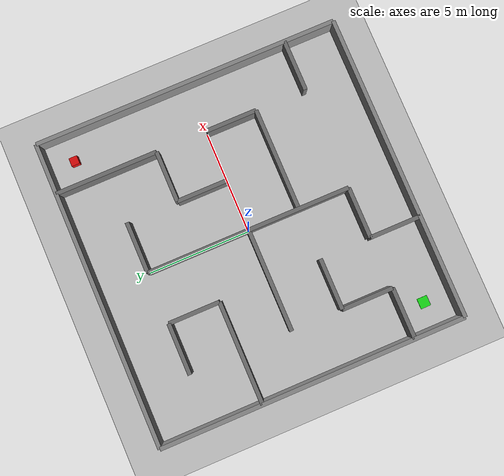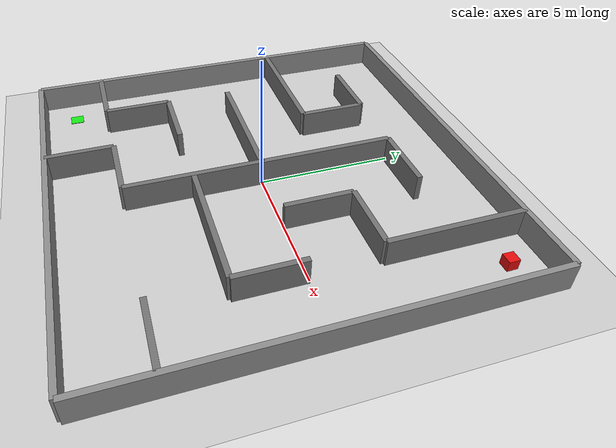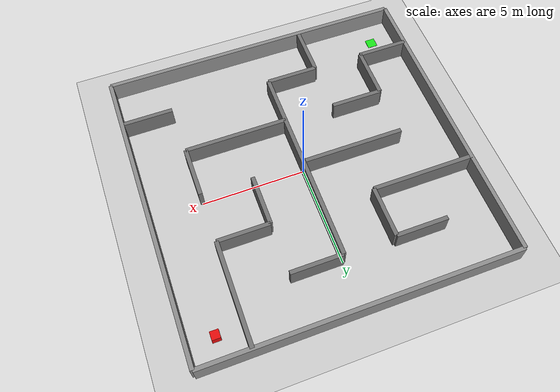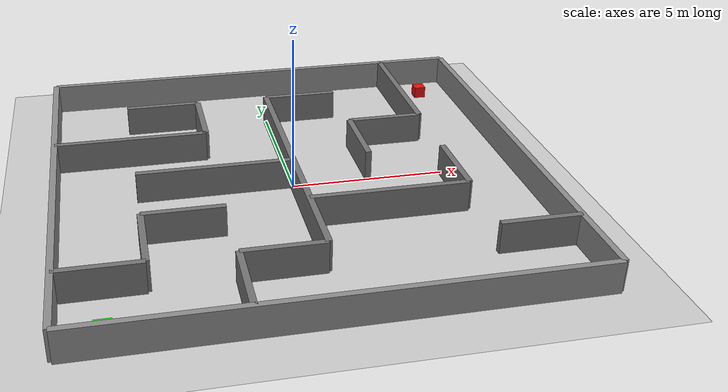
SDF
<?xml version="1.0" ?>
<sdf version="1.9">
  <world name="camera_maze_world">

    <physics name="1ms" type="ignored">
      <max_step_size>0.001</max_step_size>
      <real_time_factor>1.0</real_time_factor>
    </physics>

    <plugin filename="gz-sim-physics-system" name="gz::sim::systems::Physics"></plugin>
    <plugin filename="gz-sim-sensors-system" name="gz::sim::systems::Sensors">
      <render_engine>ogre2</render_engine>
    </plugin>
    <plugin filename="gz-sim-scene-broadcaster-system" name="gz::sim::systems::SceneBroadcaster"></plugin>
    <plugin filename="gz-sim-user-commands-system" name="gz::sim::systems::UserCommands"></plugin>
    <plugin filename="gz-sim-contact-system" name="gz::sim::systems::Contact"></plugin>

    <light type="directional" name="sun">
      <cast_shadows>true</cast_shadows>
      <pose>0 0 10 0 0 0</pose>
      <diffuse>0.8 0.8 0.8 1</diffuse>
      <specular>0.2 0.2 0.2 1</specular>
      <attenuation>
        <range>1000</range>
        <constant>0.9</constant>
        <linear>0.01</linear>
        <quadratic>0.001</quadratic>
      </attenuation>
      <direction>-0.5 0.1 -0.9</direction>
    </light>

    <model name="ground_plane">
      <static>true</static>
      <link name="link">
        <collision name="collision">
          <pose>0.00 0.00 0 0 0 0</pose>
          <geometry><plane><normal>0 0 1</normal><size>20.0 20.0</size></plane></geometry>
        </collision>
        <visual name="visual">
          <pose>0.00 0.00 0 0 0 0</pose>
          <geometry><plane><normal>0 0 1</normal><size>20.0 20.0</size></plane></geometry>
          <material>
            <ambient>0.8 0.8 0.8 1</ambient>
            <diffuse>0.8 0.8 0.8 1</diffuse>
            <specular>0.8 0.8 0.8 1</specular>
          </material>
        </visual>
      </link>
    </model>

    <!-- Robot spawn marker: a flat green square showing exactly where the
         robot should be spawned. -->
    <model name="robot_spawn_marker">
      <static>true</static>
      <pose>-6.25 -6.25 0.01 0 0 0</pose>
      <link name="link">
        <visual name="visual">
          <geometry><box><size>0.5 0.5 0.02</size></box></geometry>
          <material>
            <ambient>0.1 0.9 0.1 1</ambient>
            <diffuse>0.1 0.9 0.1 1</diffuse>
          </material>
        </visual>
      </link>
    </model>

    <!-- MAZE LAYOUT:  -->

    <!-- Outer walls -->

    <model name="wall_west">
      <static>true</static>
      <pose>-7.50 0.00 0.5 0 0 0</pose>
      <link name="link">
        <collision name="collision"><geometry><box><size>0.2 15.00 1</size></box></geometry></collision>
        <visual name="visual">
          <geometry><box><size>0.2 15.00 1</size></box></geometry>
          <material><ambient>0.55 0.55 0.55 1</ambient><diffuse>0.55 0.55 0.55 1</diffuse></material>
        </visual>
      </link>
    </model>

    <model name="wall_east">
      <static>true</static>
      <pose>7.50 0.00 0.5 0 0 0</pose>
      <link name="link">
        <collision name="collision"><geometry><box><size>0.2 15.00 1</size></box></geometry></collision>
        <visual name="visual">
          <geometry><box><size>0.2 15.00 1</size></box></geometry>
          <material><ambient>0.55 0.55 0.55 1</ambient><diffuse>0.55 0.55 0.55 1</diffuse></material>
        </visual>
      </link>
    </model>

    <model name="wall_north">
      <static>true</static>
      <pose>0.00 7.50 0.5 0 0 0</pose>
      <link name="link">
        <collision name="collision"><geometry><box><size>15.00 0.2 1</size></box></geometry></collision>
        <visual name="visual">
          <geometry><box><size>15.00 0.2 1</size></box></geometry>
          <material><ambient>0.55 0.55 0.55 1</ambient><diffuse>0.55 0.55 0.55 1</diffuse></material>
        </visual>
      </link>
    </model>

    <model name="wall_south">
      <static>true</static>
      <pose>0.00 -7.50 0.5 0 0 0</pose>
      <link name="link">
        <collision name="collision"><geometry><box><size>15.00 0.2 1</size></box></geometry></collision>
        <visual name="visual">
          <geometry><box><size>15.00 0.2 1</size></box></geometry>
          <material><ambient>0.55 0.55 0.55 1</ambient><diffuse>0.55 0.55 0.55 1</diffuse></material>
        </visual>
      </link>
    </model>

    <!-- Internal maze dividers (25 walls) -->

    <model name="divider1">
      <static>true</static>
      <pose>-2.50 -6.25 0.50 0 0 0</pose>
      <link name="link">
        <collision name="collision"><geometry><box><size>0.20 2.50 1.0</size></box></geometry></collision>
        <visual name="visual">
          <geometry><box><size>0.20 2.50 1.0</size></box></geometry>
          <material><ambient>0.45 0.45 0.45 1</ambient><diffuse>0.45 0.45 0.45 1</diffuse></material>
        </visual>
      </link>
    </model>
    <model name="divider2">
      <static>true</static>
      <pose>-5.00 -3.75 0.50 0 0 0</pose>
      <link name="link">
        <collision name="collision"><geometry><box><size>0.20 2.50 1.0</size></box></geometry></collision>
        <visual name="visual">
          <geometry><box><size>0.20 2.50 1.0</size></box></geometry>
          <material><ambient>0.45 0.45 0.45 1</ambient><diffuse>0.45 0.45 0.45 1</diffuse></material>
        </visual>
      </link>
    </model>

    <model name="divider3">
      <static>true</static>
      <pose>0.00 -2.50 0.50 0 0 0</pose>
      <link name="link">
        <collision name="collision"><geometry><box><size>0.20 5. 0 1.0</size></box></geometry></collision>
        <visual name="visual">
          <geometry><box><size>0.20 5.0 1.0</size></box></geometry>
          <material><ambient>0.45 0.45 0.45 1</ambient><diffuse>0.45 0.45 0.45 1</diffuse></material>
        </visual>
      </link>
    </model>
    <model name="divider4">
      <static>true</static>
      <pose>5.00 -1.25 0.50 0 0 0</pose>
      <link name="link">
        <collision name="collision"><geometry><box><size>0.20 2.50 1.0</size></box></geometry></collision>
        <visual name="visual">
          <geometry><box><size>0.20 2.50 1.0</size></box></geometry>
          <material><ambient>0.45 0.45 0.45 1</ambient><diffuse>0.45 0.45 0.45 1</diffuse></material>
        </visual>
      </link>
    </model>
    <model name="divider5">
      <static>true</static>
      <pose>0.00 2.5 0.50 0 0 0</pose>
      <link name="link">
        <collision name="collision"><geometry><box><size>0.20 5.0 1.0</size></box></geometry></collision>
        <visual name="visual">
          <geometry><box><size>0.20 5.0 1.0</size></box></geometry>
          <material><ambient>0.45 0.45 0.45 1</ambient><diffuse>0.45 0.45 0.45 1</diffuse></material>
        </visual>
      </link>
    </model>
    <model name="divider6">
      <static>true</static>
      <pose>2.50 1.25 0.50 0 0 0</pose>
      <link name="link">
        <collision name="collision"><geometry><box><size>0.20 2.50 1.0</size></box></geometry></collision>
        <visual name="visual">
          <geometry><box><size>0.20 2.50 1.0</size></box></geometry>
          <material><ambient>0.45 0.45 0.45 1</ambient><diffuse>0.45 0.45 0.45 1</diffuse></material>
        </visual>
      </link>
    </model>
    <model name="divider7">
      <static>true</static>
      <pose>-2.50 3.75 0.50 0 0 0</pose>
      <link name="link">
        <collision name="collision"><geometry><box><size>0.20 2.50 1.0</size></box></geometry></collision>
        <visual name="visual">
          <geometry><box><size>0.20 2.50 1.0</size></box></geometry>
          <material><ambient>0.45 0.45 0.45 1</ambient><diffuse>0.45 0.45 0.45 1</diffuse></material>
        </visual>
      </link>
    </model>

    <model name="divider8">
      <static>true</static>
      <pose>5.00 5 0.50 0 0 0</pose>
      <link name="link">
        <collision name="collision"><geometry><box><size>0.20 5.0 1.0</size></box></geometry></collision>
        <visual name="visual">
          <geometry><box><size>0.20 5.0 1.0</size></box></geometry>
          <material><ambient>0.45 0.45 0.45 1</ambient><diffuse>0.45 0.45 0.45 1</diffuse></material>
        </visual>
      </link>
    </model>

    <model name="divider9">
      <static>true</static>
      <pose>-6.25 -5.00 0.50 0 0 0</pose>
      <link name="link">
        <collision name="collision"><geometry><box><size>2.50 0.20 1.0</size></box></geometry></collision>
        <visual name="visual">
          <geometry><box><size>2.50 0.20 1.0</size></box></geometry>
          <material><ambient>0.45 0.45 0.45 1</ambient><diffuse>0.45 0.45 0.45 1</diffuse></material>
        </visual>
      </link>
    </model>
    <model name="divider10">
      <static>true</static>
      <pose>-1.25 -5.00 0.50 0 0 0</pose>
      <link name="link">
        <collision name="collision"><geometry><box><size>2.50 0.20 1.0</size></box></geometry></collision>
        <visual name="visual">
          <geometry><box><size>2.50 0.20 1.0</size></box></geometry>
          <material><ambient>0.45 0.45 0.45 1</ambient><diffuse>0.45 0.45 0.45 1</diffuse></material>
        </visual>
      </link>
    </model>
    <model name="divider11">
      <static>true</static>
      <pose>6.25 -5.00 0.50 0 0 0</pose>
      <link name="link">
        <collision name="collision"><geometry><box><size>0.20 5.0 1.0</size></box></geometry></collision>
        <visual name="visual">
          <geometry><box><size>2.50 0.20 1.0</size></box></geometry>
          <material><ambient>0.45 0.45 0.45 1</ambient><diffuse>0.45 0.45 0.45 1</diffuse></material>
        </visual>
      </link>
    </model>

    <model name="divider12">
      <static>true</static>
      <pose>-3.75 -2.50 0.50 0 0 0</pose>
      <link name="link">
        <collision name="collision"><geometry><box><size>2.50 0.20 1.0</size></box></geometry></collision>
        <visual name="visual">
          <geometry><box><size>2.50 0.20 1.0</size></box></geometry>
          <material><ambient>0.45 0.45 0.45 1</ambient><diffuse>0.45 0.45 0.45 1</diffuse></material>
        </visual>
      </link>
    </model>
    <model name="divider13">
      <static>true</static>
      <pose>2.50 -2.50 0.50 0 0 0</pose>
      <link name="link">
        <collision name="collision"><geometry><box><size>5.0 0.20 1.0</size></box></geometry></collision>
        <visual name="visual">
          <geometry><box><size>5.00 0.20 1.0</size></box></geometry>
          <material><ambient>0.45 0.45 0.45 1</ambient><diffuse>0.45 0.45 0.45 1</diffuse></material>
        </visual>
      </link>
    </model>

    <model name="divider14">
      <static>true</static>
      <pose>-2.5 0.00 0.50 0 0 0</pose>
      <link name="link">
        <collision name="collision"><geometry><box><size>5.0 0.20 1.0</size></box></geometry></collision>
        <visual name="visual">
          <geometry><box><size>5.0 0.20 1.0</size></box></geometry>
          <material><ambient>0.45 0.45 0.45 1</ambient><diffuse>0.45 0.45 0.45 1</diffuse></material>
        </visual>
      </link>
    </model>
    <model name="divider15">
      <static>true</static>
      <pose>-5.00 2.50 0.50 0 0 0</pose>
      <link name="link">
        <collision name="collision"><geometry><box><size>5.0 0.20 1.0</size></box></geometry></collision>
        <visual name="visual">
          <geometry><box><size>5.0 0.20 1.0</size></box></geometry>
          <material><ambient>0.45 0.45 0.45 1</ambient><diffuse>0.45 0.45 0.45 1</diffuse></material>
        </visual>
      </link>
    </model>

    <model name="divider16">
      <static>true</static>
      <pose>3.75 2.50 0.50 0 0 0</pose>
      <link name="link">
        <collision name="collision"><geometry><box><size>2.50 0.20 1.0</size></box></geometry></collision>
        <visual name="visual">
          <geometry><box><size>2.50 0.20 1.0</size></box></geometry>
          <material><ambient>0.45 0.45 0.45 1</ambient><diffuse>0.45 0.45 0.45 1</diffuse></material>
        </visual>
      </link>
    </model>
    <model name="divider17">
      <static>true</static>
      <pose>-3.75 5.00 0.50 0 0 0</pose>
      <link name="link">
        <collision name="collision"><geometry><box><size>2.50 0.20 1.0</size></box></geometry></collision>
        <visual name="visual">
          <geometry><box><size>2.50 0.20 1.0</size></box></geometry>
          <material><ambient>0.45 0.45 0.45 1</ambient><diffuse>0.45 0.45 0.45 1</diffuse></material>
        </visual>
      </link>
    </model>
    <model name="divider18">
      <static>true</static>
      <pose>1.25 5.00 0.50 0 0 0</pose>
      <link name="link">
        <collision name="collision"><geometry><box><size>2.50 0.20 1.0</size></box></geometry></collision>
        <visual name="visual">
          <geometry><box><size>2.50 0.20 1.0</size></box></geometry>
          <material><ambient>0.45 0.45 0.45 1</ambient><diffuse>0.45 0.45 0.45 1</diffuse></material>
        </visual>
      </link>
    </model>

    <!-- Goal: Red cube, far corner of the maze -->
    <model name="target">
      <static>true</static>
      <pose>6.25 6.25 0.2 0 0 0</pose>
      <link name="link">
        <collision name="collision">
          <geometry><box><size>0.4 0.4 0.4</size></box></geometry>
        </collision>
        <visual name="visual">
          <geometry><box><size>0.4 0.4 0.4</size></box></geometry>
          <material>
            <ambient>0.9 0.05 0.05 1</ambient>
            <diffuse>0.9 0.05 0.05 1</diffuse>
            <specular>0.3 0.3 0.3 1</specular>
          </material>
        </visual>
      </link>
    </model>

    <!-- Suggested robot spawn: (-6.25, -6.25, 0.1), yaw 0 -->

  </world>
</sdf>
